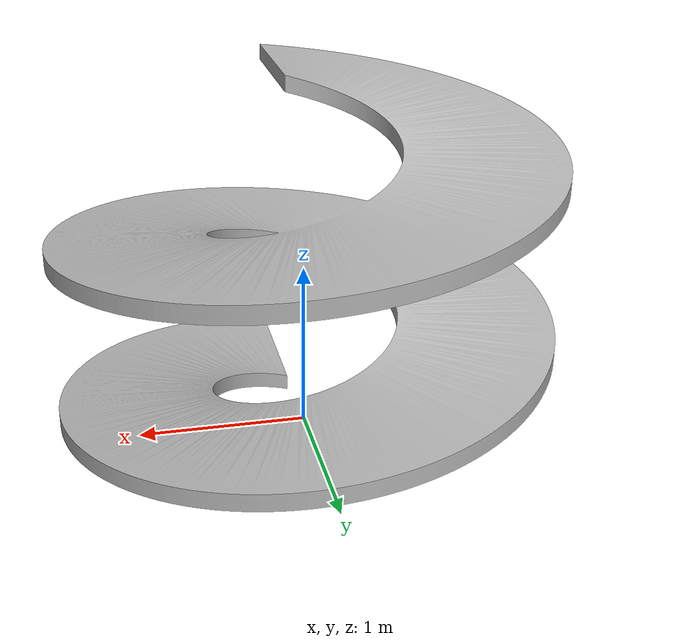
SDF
<?xml version="1.0"?>
<sdf version="1.10">
  <model name="ramp">
    <static>true</static>
    <link name="ramp_link">
      <visual name="ramp_visual">
        <geometry>
          <mesh>
            <uri>model://ramp/meshes/ramp.dae</uri>
          </mesh>
        </geometry>
      </visual>

      <collision name="ramp_collision">
        <geometry>
          <mesh>
            <uri>model://ramp/meshes/ramp.dae</uri>
          </mesh>
        </geometry>
      </collision>
    </link>
  </model>
</sdf>
